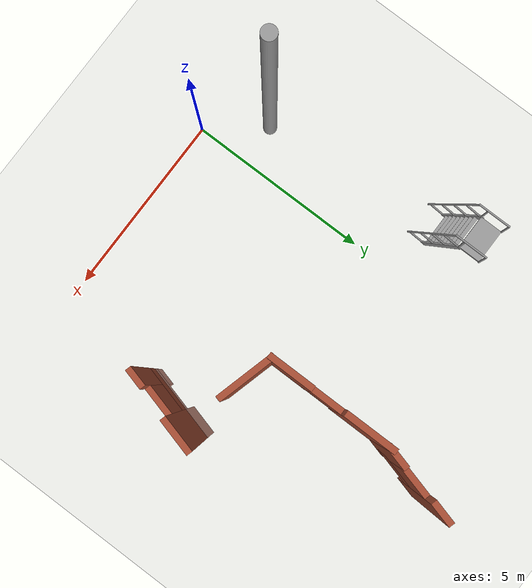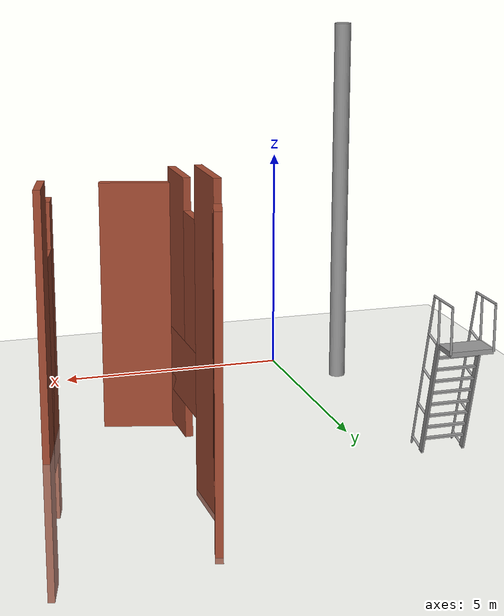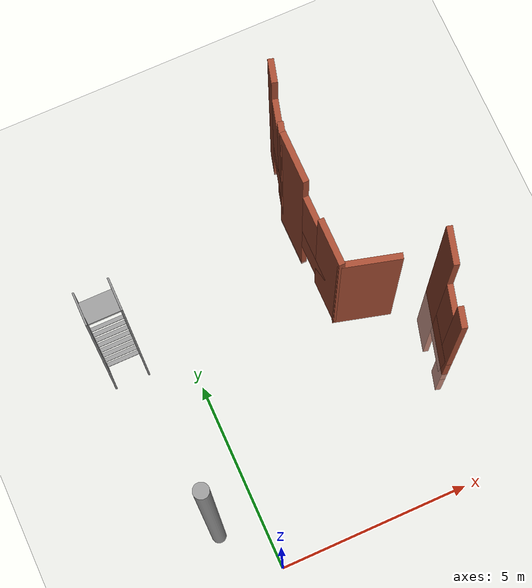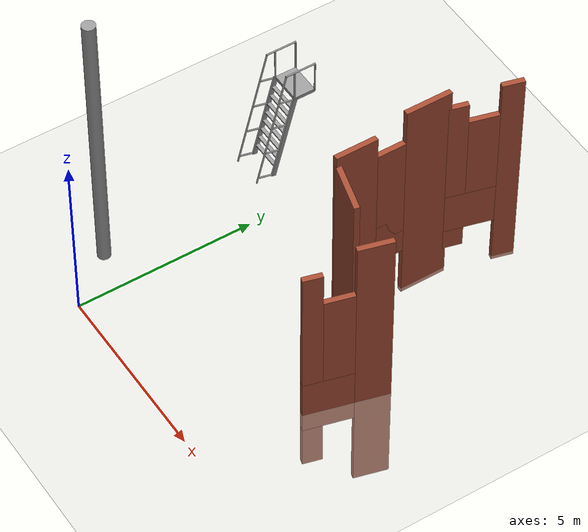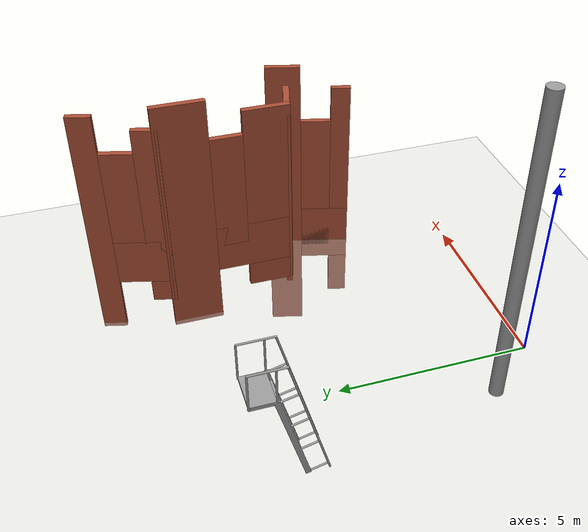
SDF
<sdf version="1.6">
 <world name="default">
  <model name="ground_plane">
   <static>1</static>
   <link name="link">
    <collision name="collision">
     <geometry><plane><normal>0 0 1</normal><size>100 100</size></plane></geometry>
     <surface><friction><ode><mu>100</mu><mu2>50</mu2></ode></friction></surface>
    </collision>
    <visual name="visual">
     <cast_shadows>0</cast_shadows>
     <geometry><plane><normal>0 0 1</normal><size>100 100</size></plane></geometry>
     <material>
      <script><uri>file://media/materials/scripts/gazebo.material</uri><name>Gazebo/Grey</name></script>
     </material>
    </visual>
   </link>
  </model>
  <model name="ladder_75deg_2rails">
   <static>1</static>
   <link name="step0">
    <pose>0 0.071453 0.266667 0 -0 0</pose>
    <inertial>
     <mass>9.75482</mass>
     <inertia>
      <ixx>0.00957124</ixx>
      <iyy>0.65963</iyy>
      <izz>0.666842</izz>
      <ixy>0</ixy>
      <ixz>0</ixz>
      <iyz>0</iyz>
     </inertia>
    </inertial>
    <collision name="collision"><geometry><box><size>0.9 0.1016 0.0381</size></box></geometry></collision>
    <visual name="visual">
     <geometry><box><size>0.9 0.1016 0.0381</size></box></geometry>
     <material>
      <script><uri>file://media/materials/scripts/gazebo.material</uri><name>Gazebo/Grey</name></script>
     </material>
    </visual>
   </link>
   <link name="step1">
    <pose>0 0.142906 0.533333 0 -0 0</pose>
    <inertial>
     <mass>9.75482</mass>
     <inertia>
      <ixx>0.00957124</ixx>
      <iyy>0.65963</iyy>
      <izz>0.666842</izz>
      <ixy>0</ixy>
      <ixz>0</ixz>
      <iyz>0</iyz>
     </inertia>
    </inertial>
    <collision name="collision"><geometry><box><size>0.9 0.1016 0.0381</size></box></geometry></collision>
    <visual name="visual">
     <geometry><box><size>0.9 0.1016 0.0381</size></box></geometry>
     <material>
      <script><uri>file://media/materials/scripts/gazebo.material</uri><name>Gazebo/Grey</name></script>
     </material>
    </visual>
   </link>
   <link name="step2">
    <pose>0 0.214359 0.8 0 -0 0</pose>
    <inertial>
     <mass>9.75482</mass>
     <inertia>
      <ixx>0.00957124</ixx>
      <iyy>0.65963</iyy>
      <izz>0.666842</izz>
      <ixy>0</ixy>
      <ixz>0</ixz>
      <iyz>0</iyz>
     </inertia>
    </inertial>
    <collision name="collision"><geometry><box><size>0.9 0.1016 0.0381</size></box></geometry></collision>
    <visual name="visual">
     <geometry><box><size>0.9 0.1016 0.0381</size></box></geometry>
     <material>
      <script><uri>file://media/materials/scripts/gazebo.material</uri><name>Gazebo/Grey</name></script>
     </material>
    </visual>
   </link>
   <link name="step3">
    <pose>0 0.285812 1.06667 0 -0 0</pose>
    <inertial>
     <mass>9.75482</mass>
     <inertia>
      <ixx>0.00957124</ixx>
      <iyy>0.65963</iyy>
      <izz>0.666842</izz>
      <ixy>0</ixy>
      <ixz>0</ixz>
      <iyz>0</iyz>
     </inertia>
    </inertial>
    <collision name="collision"><geometry><box><size>0.9 0.1016 0.0381</size></box></geometry></collision>
    <visual name="visual">
     <geometry><box><size>0.9 0.1016 0.0381</size></box></geometry>
     <material>
      <script><uri>file://media/materials/scripts/gazebo.material</uri><name>Gazebo/Grey</name></script>
     </material>
    </visual>
   </link>
   <link name="step4">
    <pose>0 0.357266 1.33333 0 -0 0</pose>
    <inertial>
     <mass>9.75482</mass>
     <inertia>
      <ixx>0.00957124</ixx>
      <iyy>0.65963</iyy>
      <izz>0.666842</izz>
      <ixy>0</ixy>
      <ixz>0</ixz>
      <iyz>0</iyz>
     </inertia>
    </inertial>
    <collision name="collision"><geometry><box><size>0.9 0.1016 0.0381</size></box></geometry></collision>
    <visual name="visual">
     <geometry><box><size>0.9 0.1016 0.0381</size></box></geometry>
     <material>
      <script><uri>file://media/materials/scripts/gazebo.material</uri><name>Gazebo/Grey</name></script>
     </material>
    </visual>
   </link>
   <link name="step5">
    <pose>0 0.428719 1.6 0 -0 0</pose>
    <inertial>
     <mass>9.75482</mass>
     <inertia>
      <ixx>0.00957124</ixx>
      <iyy>0.65963</iyy>
      <izz>0.666842</izz>
      <ixy>0</ixy>
      <ixz>0</ixz>
      <iyz>0</iyz>
     </inertia>
    </inertial>
    <collision name="collision"><geometry><box><size>0.9 0.1016 0.0381</size></box></geometry></collision>
    <visual name="visual">
     <geometry><box><size>0.9 0.1016 0.0381</size></box></geometry>
     <material>
      <script><uri>file://media/materials/scripts/gazebo.material</uri><name>Gazebo/Grey</name></script>
     </material>
    </visual>
   </link>
   <link name="step6">
    <pose>0 0.500172 1.86667 0 -0 0</pose>
    <inertial>
     <mass>9.75482</mass>
     <inertia>
      <ixx>0.00957124</ixx>
      <iyy>0.65963</iyy>
      <izz>0.666842</izz>
      <ixy>0</ixy>
      <ixz>0</ixz>
      <iyz>0</iyz>
     </inertia>
    </inertial>
    <collision name="collision"><geometry><box><size>0.9 0.1016 0.0381</size></box></geometry></collision>
    <visual name="visual">
     <geometry><box><size>0.9 0.1016 0.0381</size></box></geometry>
     <material>
      <script><uri>file://media/materials/scripts/gazebo.material</uri><name>Gazebo/Grey</name></script>
     </material>
    </visual>
   </link>
   <link name="step7">
    <pose>0 0.571625 2.13333 0 -0 0</pose>
    <inertial>
     <mass>9.75482</mass>
     <inertia>
      <ixx>0.00957124</ixx>
      <iyy>0.65963</iyy>
      <izz>0.666842</izz>
      <ixy>0</ixy>
      <ixz>0</ixz>
      <iyz>0</iyz>
     </inertia>
    </inertial>
    <collision name="collision"><geometry><box><size>0.9 0.1016 0.0381</size></box></geometry></collision>
    <visual name="visual">
     <geometry><box><size>0.9 0.1016 0.0381</size></box></geometry>
     <material>
      <script><uri>file://media/materials/scripts/gazebo.material</uri><name>Gazebo/Grey</name></script>
     </material>
    </visual>
   </link>
   <link name="landing">
    <pose>0 0.943078 2.4 0 -0 0</pose>
    <inertial>
     <mass>57.6072</mass>
     <inertia><ixx>1.73518</ixx><iyy>3.89545</iyy><izz>5.6167</izz><ixy>0</ixy><ixz>0</ixz><iyz>0</iyz></inertia>
    </inertial>
    <collision name="collision"><geometry><box><size>0.9 0.6 0.1016</size></box></geometry></collision>
    <visual name="visual">
     <geometry><box><size>0.9 0.6 0.1016</size></box></geometry>
     <material>
      <script><uri>file://media/materials/scripts/gazebo.material</uri><name>Gazebo/Grey</name></script>
     </material>
    </visual>
   </link>
   <link name="left_side_wall">
    <pose>-0.45 0.321539 1.2 1.309 -0 0</pose>
    <collision name="collision"><geometry><box><size>0.0508 2.56466 0.13</size></box></geometry></collision>
    <visual name="visual">
     <geometry><box><size>0.0508 2.56466 0.13</size></box></geometry>
     <material>
      <script><uri>file://media/materials/scripts/gazebo.material</uri><name>Gazebo/Grey</name></script>
     </material>
    </visual>
   </link>
   <link name="right_side_wall">
    <pose>0.45 0.321539 1.2 1.309 -0 0</pose>
    <collision name="collision"><geometry><box><size>0.0508 2.56466 0.13</size></box></geometry></collision>
    <visual name="visual">
     <geometry><box><size>0.0508 2.56466 0.13</size></box></geometry>
     <material>
      <script><uri>file://media/materials/scripts/gazebo.material</uri><name>Gazebo/Grey</name></script>
     </material>
    </visual>
   </link>
   <link name="left_railing_long">
    <pose>-0.45 -0.053461 1.66651 -0.261799 0 0</pose>
    <collision name="collision">
     <geometry><cylinder><radius>0.02413</radius><length>3.51529</length></cylinder></geometry>
    </collision>
    <visual name="visual">
     <geometry><cylinder><radius>0.02413</radius><length>3.51529</length></cylinder></geometry>
     <material>
      <script><uri>file://media/materials/scripts/gazebo.material</uri><name>Gazebo/Grey</name></script>
     </material>
    </visual>
   </link>
   <link name="left_railing_upright0">
    <pose>-0.45 -0.210089 0.056293 1.309 -0 0</pose>
    <collision name="collision">
     <geometry><cylinder><radius>0.02413</radius><length>0.482963</length></cylinder></geometry>
    </collision>
    <visual name="visual">
     <geometry><cylinder><radius>0.02413</radius><length>0.482963</length></cylinder></geometry>
     <material>
      <script><uri>file://media/materials/scripts/gazebo.material</uri><name>Gazebo/Grey</name></script>
     </material>
    </visual>
   </link>
   <link name="left_railing_upright1">
    <pose>-0.45 0.00427 0.856293 1.309 -0 0</pose>
    <collision name="collision">
     <geometry><cylinder><radius>0.02413</radius><length>0.482963</length></cylinder></geometry>
    </collision>
    <visual name="visual">
     <geometry><cylinder><radius>0.02413</radius><length>0.482963</length></cylinder></geometry>
     <material>
      <script><uri>file://media/materials/scripts/gazebo.material</uri><name>Gazebo/Grey</name></script>
     </material>
    </visual>
   </link>
   <link name="left_railing_upright2">
    <pose>-0.45 0.21863 1.65629 1.309 -0 0</pose>
    <collision name="collision">
     <geometry><cylinder><radius>0.02413</radius><length>0.482963</length></cylinder></geometry>
    </collision>
    <visual name="visual">
     <geometry><cylinder><radius>0.02413</radius><length>0.482963</length></cylinder></geometry>
     <material>
      <script><uri>file://media/materials/scripts/gazebo.material</uri><name>Gazebo/Grey</name></script>
     </material>
    </visual>
   </link>
   <link name="left_railing_upright3">
    <pose>-0.45 0.432989 2.45629 1.309 -0 0</pose>
    <collision name="collision">
     <geometry><cylinder><radius>0.02413</radius><length>0.482963</length></cylinder></geometry>
    </collision>
    <visual name="visual">
     <geometry><cylinder><radius>0.02413</radius><length>0.482963</length></cylinder></geometry>
     <material>
      <script><uri>file://media/materials/scripts/gazebo.material</uri><name>Gazebo/Grey</name></script>
     </material>
    </visual>
   </link>
   <link name="left_railing_landing_top">
    <pose>-0.45 0.818078 3.35714 1.5708 -0 0</pose>
    <collision name="collision">
     <geometry><cylinder><radius>0.02413</radius><length>0.87413</length></cylinder></geometry>
    </collision>
    <visual name="visual">
     <geometry><cylinder><radius>0.02413</radius><length>0.87413</length></cylinder></geometry>
     <material>
      <script><uri>file://media/materials/scripts/gazebo.material</uri><name>Gazebo/Grey</name></script>
     </material>
    </visual>
   </link>
   <link name="left_railing_landing_upright_0">
    <pose>-0.45 0.643078 2.86651 0 -0 0</pose>
    <collision name="collision">
     <geometry><cylinder><radius>0.02413</radius><length>0.933013</length></cylinder></geometry>
    </collision>
    <visual name="visual">
     <geometry><cylinder><radius>0.02413</radius><length>0.933013</length></cylinder></geometry>
     <material>
      <script><uri>file://media/materials/scripts/gazebo.material</uri><name>Gazebo/Grey</name></script>
     </material>
    </visual>
   </link>
   <link name="left_railing_landing_upright_1">
    <pose>-0.45 1.24308 2.86651 0 -0 0</pose>
    <collision name="collision">
     <geometry><cylinder><radius>0.02413</radius><length>0.933013</length></cylinder></geometry>
    </collision>
    <visual name="visual">
     <geometry><cylinder><radius>0.02413</radius><length>0.933013</length></cylinder></geometry>
     <material>
      <script><uri>file://media/materials/scripts/gazebo.material</uri><name>Gazebo/Grey</name></script>
     </material>
    </visual>
   </link>
   <link name="right_railing_long">
    <pose>0.45 -0.053461 1.66651 -0.261799 0 0</pose>
    <collision name="collision">
     <geometry><cylinder><radius>0.02413</radius><length>3.51529</length></cylinder></geometry>
    </collision>
    <visual name="visual">
     <geometry><cylinder><radius>0.02413</radius><length>3.51529</length></cylinder></geometry>
     <material>
      <script><uri>file://media/materials/scripts/gazebo.material</uri><name>Gazebo/Grey</name></script>
     </material>
    </visual>
   </link>
   <link name="right_railing_upright0">
    <pose>0.45 -0.210089 0.056293 1.309 -0 0</pose>
    <collision name="collision">
     <geometry><cylinder><radius>0.02413</radius><length>0.482963</length></cylinder></geometry>
    </collision>
    <visual name="visual">
     <geometry><cylinder><radius>0.02413</radius><length>0.482963</length></cylinder></geometry>
     <material>
      <script><uri>file://media/materials/scripts/gazebo.material</uri><name>Gazebo/Grey</name></script>
     </material>
    </visual>
   </link>
   <link name="right_railing_upright1">
    <pose>0.45 0.00427 0.856293 1.309 -0 0</pose>
    <collision name="collision">
     <geometry><cylinder><radius>0.02413</radius><length>0.482963</length></cylinder></geometry>
    </collision>
    <visual name="visual">
     <geometry><cylinder><radius>0.02413</radius><length>0.482963</length></cylinder></geometry>
     <material>
      <script><uri>file://media/materials/scripts/gazebo.material</uri><name>Gazebo/Grey</name></script>
     </material>
    </visual>
   </link>
   <link name="right_railing_upright2">
    <pose>0.45 0.21863 1.65629 1.309 -0 0</pose>
    <collision name="collision">
     <geometry><cylinder><radius>0.02413</radius><length>0.482963</length></cylinder></geometry>
    </collision>
    <visual name="visual">
     <geometry><cylinder><radius>0.02413</radius><length>0.482963</length></cylinder></geometry>
     <material>
      <script><uri>file://media/materials/scripts/gazebo.material</uri><name>Gazebo/Grey</name></script>
     </material>
    </visual>
   </link>
   <link name="right_railing_upright3">
    <pose>0.45 0.432989 2.45629 1.309 -0 0</pose>
    <collision name="collision">
     <geometry><cylinder><radius>0.02413</radius><length>0.482963</length></cylinder></geometry>
    </collision>
    <visual name="visual">
     <geometry><cylinder><radius>0.02413</radius><length>0.482963</length></cylinder></geometry>
     <material>
      <script><uri>file://media/materials/scripts/gazebo.material</uri><name>Gazebo/Grey</name></script>
     </material>
    </visual>
   </link>
   <link name="right_railing_landing_top">
    <pose>0.45 0.818078 3.35714 1.5708 -0 0</pose>
    <collision name="collision">
     <geometry><cylinder><radius>0.02413</radius><length>0.87413</length></cylinder></geometry>
    </collision>
    <visual name="visual">
     <geometry><cylinder><radius>0.02413</radius><length>0.87413</length></cylinder></geometry>
     <material>
      <script><uri>file://media/materials/scripts/gazebo.material</uri><name>Gazebo/Grey</name></script>
     </material>
    </visual>
   </link>
   <link name="right_railing_landing_upright_0">
    <pose>0.45 0.643078 2.86651 0 -0 0</pose>
    <collision name="collision">
     <geometry><cylinder><radius>0.02413</radius><length>0.933013</length></cylinder></geometry>
    </collision>
    <visual name="visual">
     <geometry><cylinder><radius>0.02413</radius><length>0.933013</length></cylinder></geometry>
     <material>
      <script><uri>file://media/materials/scripts/gazebo.material</uri><name>Gazebo/Grey</name></script>
     </material>
    </visual>
   </link>
   <link name="right_railing_landing_upright_1">
    <pose>0.45 1.24308 2.86651 0 -0 0</pose>
    <collision name="collision">
     <geometry><cylinder><radius>0.02413</radius><length>0.933013</length></cylinder></geometry>
    </collision>
    <visual name="visual">
     <geometry><cylinder><radius>0.02413</radius><length>0.933013</length></cylinder></geometry>
     <material>
      <script><uri>file://media/materials/scripts/gazebo.material</uri><name>Gazebo/Grey</name></script>
     </material>
    </visual>
   </link>
   <pose>-1.56017 6.39658 0 0 -0 0</pose>
  </model>
  <model name="static_cylinder_1">
   <link name="link">
    <inertial>
     <mass>1</mass>
     <inertia><ixx>0.145833</ixx><ixy>0</ixy><ixz>0</ixz><iyy>0.145833</iyy><iyz>0</iyz><izz>0.125</izz></inertia>
    </inertial>
    <visual name="visual">
     <geometry><cylinder><radius>0.179996</radius><length>8.1225</length></cylinder></geometry>
     <material>
      <script><name>Gazebo/Grey</name><uri>file://media/materials/scripts/gazebo.material</uri></script>
      <ambient>0.3 0.3 0.3 1</ambient>
      <diffuse>0.7 0.7 0.7 1</diffuse>
      <specular>0.01 0.01 0.01 1</specular>
      <emissive>0 0 0 1</emissive>
     </material>
    </visual>
    <collision name="collision">
     <geometry><cylinder><radius>0.179996</radius><length>8.1225</length></cylinder></geometry>
     <surface>
      <friction>
       <ode><mu>1</mu><mu2>1</mu2><fdir1>0 0 0</fdir1><slip1>0</slip1><slip2>0</slip2></ode>
       <torsional>
        <coefficient>1</coefficient>
        <patch_radius>0</patch_radius>
        <surface_radius>0</surface_radius>
        <use_patch_radius>1</use_patch_radius>
        <ode><slip>0</slip></ode>
       </torsional>
      </friction>
      <bounce><restitution_coefficient>0</restitution_coefficient><threshold>1e+06</threshold></bounce>
      <contact>
       <collide_without_contact>0</collide_without_contact>
       <collide_without_contact_bitmask>1</collide_without_contact_bitmask>
       <collide_bitmask>1</collide_bitmask>
       <ode>
        <soft_cfm>0</soft_cfm>
        <soft_erp>0.2</soft_erp>
        <kp>1e+13</kp>
        <kd>1</kd>
        <max_vel>0.01</max_vel>
        <min_depth>0</min_depth>
       </ode>
       <bullet>
        <split_impulse>1</split_impulse>
        <split_impulse_penetration_threshold>-0.01</split_impulse_penetration_threshold>
        <soft_cfm>0</soft_cfm>
        <soft_erp>0.2</soft_erp>
        <kp>1e+13</kp>
        <kd>1</kd>
       </bullet>
      </contact>
     </surface>
    </collision>
   </link>
   <static>1</static>
   <pose>-1.11515 1.37724 4.06125 -1.4e-05 -8e-06 -0.0024</pose>
  </model>
  <model name="slam_example_sustitutosaloon_0">
   <link name="Wall_12">
    <pose>-0.412592 2.73893 1.73566 0 0 -1.8326</pose>
    <inertial>
     <inertia><ixx>nan</ixx><ixy>0</ixy><ixz>0</ixz><iyy>nan</iyy><iyz>0</iyz><izz>nan</izz></inertia>
     <mass>0</mass>
    </inertial>
    <visual name="Wall_12_Visual_0">
     <pose>-0.704929 0 1.25 0 -0 0</pose>
     <geometry><box><size>0.590142 0.15 6.23287</size></box></geometry>
     <material>
      <script><uri>file://media/materials/scripts/gazebo.material</uri><name>Gazebo/Bricks</name></script>
      <ambient>1 1 1 1</ambient>
      <diffuse>1 1 1 1</diffuse>
      <specular>0.2 0.2 0.2 1</specular>
      <emissive>0 0 0 1</emissive>
     </material>
    </visual>
    <visual name="Wall_12_Visual_1">
     <pose>0.295071 0 0.25 0 -0 0</pose>
     <geometry><box><size>1.40986 0.15 1.24657</size></box></geometry>
     <material>
      <script><uri>file://media/materials/scripts/gazebo.material</uri><name>Gazebo/Bricks</name></script>
      <ambient>1 1 1 1</ambient>
      <diffuse>1 1 1 1</diffuse>
      <specular>0.2 0.2 0.2 1</specular>
      <emissive>0 0 0 1</emissive>
     </material>
    </visual>
    <visual name="Wall_12_Visual_2">
     <pose>0.695071 0 1.5 0 -0 0</pose>
     <geometry><box><size>0.609858 0.15 4.9863</size></box></geometry>
     <material>
      <script><uri>file://media/materials/scripts/gazebo.material</uri><name>Gazebo/Bricks</name></script>
      <ambient>1 1 1 1</ambient>
      <diffuse>1 1 1 1</diffuse>
      <specular>0.2 0.2 0.2 1</specular>
      <emissive>0 0 0 1</emissive>
     </material>
    </visual>
    <visual name="Wall_12_Visual_3">
     <pose>-0.009858 0 1.9 0 -0 0</pose>
     <geometry><box><size>0.8 0.15 2.99177</size></box></geometry>
     <material>
      <script><uri>file://media/materials/scripts/gazebo.material</uri><name>Gazebo/Bricks</name></script>
      <ambient>1 1 1 1</ambient>
      <diffuse>1 1 1 1</diffuse>
      <specular>0.2 0.2 0.2 1</specular>
      <emissive>0 0 0 1</emissive>
     </material>
    </visual>
    <collision name="Wall_12_Collision_0">
     <pose>-0.704929 0 1.25 0 -0 0</pose>
     <geometry><box><size>0.590142 0.15 6.23287</size></box></geometry>
     <surface>
      <friction>
       <ode><mu>1</mu><mu2>1</mu2><fdir1>0 0 0</fdir1><slip1>0</slip1><slip2>0</slip2></ode>
       <torsional>
        <coefficient>1</coefficient>
        <patch_radius>0</patch_radius>
        <surface_radius>0</surface_radius>
        <use_patch_radius>1</use_patch_radius>
        <ode><slip>0</slip></ode>
       </torsional>
      </friction>
      <bounce><restitution_coefficient>0</restitution_coefficient><threshold>1e+06</threshold></bounce>
      <contact>
       <collide_without_contact>0</collide_without_contact>
       <collide_without_contact_bitmask>1</collide_without_contact_bitmask>
       <collide_bitmask>1</collide_bitmask>
       <ode>
        <soft_cfm>0</soft_cfm>
        <soft_erp>0.2</soft_erp>
        <kp>1e+13</kp>
        <kd>1</kd>
        <max_vel>0.01</max_vel>
        <min_depth>0</min_depth>
       </ode>
       <bullet>
        <split_impulse>1</split_impulse>
        <split_impulse_penetration_threshold>-0.01</split_impulse_penetration_threshold>
        <soft_cfm>0</soft_cfm>
        <soft_erp>0.2</soft_erp>
        <kp>1e+13</kp>
        <kd>1</kd>
       </bullet>
      </contact>
     </surface>
    </collision>
    <collision name="Wall_12_Collision_1">
     <pose>0.295071 0 0.25 0 -0 0</pose>
     <geometry><box><size>1.40986 0.15 1.24657</size></box></geometry>
     <surface>
      <friction>
       <ode><mu>1</mu><mu2>1</mu2><fdir1>0 0 0</fdir1><slip1>0</slip1><slip2>0</slip2></ode>
       <torsional>
        <coefficient>1</coefficient>
        <patch_radius>0</patch_radius>
        <surface_radius>0</surface_radius>
        <use_patch_radius>1</use_patch_radius>
        <ode><slip>0</slip></ode>
       </torsional>
      </friction>
      <bounce><restitution_coefficient>0</restitution_coefficient><threshold>1e+06</threshold></bounce>
      <contact>
       <collide_without_contact>0</collide_without_contact>
       <collide_without_contact_bitmask>1</collide_without_contact_bitmask>
       <collide_bitmask>1</collide_bitmask>
       <ode>
        <soft_cfm>0</soft_cfm>
        <soft_erp>0.2</soft_erp>
        <kp>1e+13</kp>
        <kd>1</kd>
        <max_vel>0.01</max_vel>
        <min_depth>0</min_depth>
       </ode>
       <bullet>
        <split_impulse>1</split_impulse>
        <split_impulse_penetration_threshold>-0.01</split_impulse_penetration_threshold>
        <soft_cfm>0</soft_cfm>
        <soft_erp>0.2</soft_erp>
        <kp>1e+13</kp>
        <kd>1</kd>
       </bullet>
      </contact>
     </surface>
    </collision>
    <collision name="Wall_12_Collision_2">
     <pose>0.695071 0 1.5 0 -0 0</pose>
     <geometry><box><size>0.609858 0.15 4.9863</size></box></geometry>
     <surface>
      <friction>
       <ode><mu>1</mu><mu2>1</mu2><fdir1>0 0 0</fdir1><slip1>0</slip1><slip2>0</slip2></ode>
       <torsional>
        <coefficient>1</coefficient>
        <patch_radius>0</patch_radius>
        <surface_radius>0</surface_radius>
        <use_patch_radius>1</use_patch_radius>
        <ode><slip>0</slip></ode>
       </torsional>
      </friction>
      <bounce><restitution_coefficient>0</restitution_coefficient><threshold>1e+06</threshold></bounce>
      <contact>
       <collide_without_contact>0</collide_without_contact>
       <collide_without_contact_bitmask>1</collide_without_contact_bitmask>
       <collide_bitmask>1</collide_bitmask>
       <ode>
        <soft_cfm>0</soft_cfm>
        <soft_erp>0.2</soft_erp>
        <kp>1e+13</kp>
        <kd>1</kd>
        <max_vel>0.01</max_vel>
        <min_depth>0</min_depth>
       </ode>
       <bullet>
        <split_impulse>1</split_impulse>
        <split_impulse_penetration_threshold>-0.01</split_impulse_penetration_threshold>
        <soft_cfm>0</soft_cfm>
        <soft_erp>0.2</soft_erp>
        <kp>1e+13</kp>
        <kd>1</kd>
       </bullet>
      </contact>
     </surface>
    </collision>
    <collision name="Wall_12_Collision_3">
     <pose>-0.009858 0 1.9 0 -0 0</pose>
     <geometry><box><size>0.8 0.15 2.99177</size></box></geometry>
     <surface>
      <friction>
       <ode><mu>1</mu><mu2>1</mu2><fdir1>0 0 0</fdir1><slip1>0</slip1><slip2>0</slip2></ode>
       <torsional>
        <coefficient>1</coefficient>
        <patch_radius>0</patch_radius>
        <surface_radius>0</surface_radius>
        <use_patch_radius>1</use_patch_radius>
        <ode><slip>0</slip></ode>
       </torsional>
      </friction>
      <bounce><restitution_coefficient>0</restitution_coefficient><threshold>1e+06</threshold></bounce>
      <contact>
       <collide_without_contact>0</collide_without_contact>
       <collide_without_contact_bitmask>1</collide_without_contact_bitmask>
       <collide_bitmask>1</collide_bitmask>
       <ode>
        <soft_cfm>0</soft_cfm>
        <soft_erp>0.2</soft_erp>
        <kp>1e+13</kp>
        <kd>1</kd>
        <max_vel>0.01</max_vel>
        <min_depth>0</min_depth>
       </ode>
       <bullet>
        <split_impulse>1</split_impulse>
        <split_impulse_penetration_threshold>-0.01</split_impulse_penetration_threshold>
        <soft_cfm>0</soft_cfm>
        <soft_erp>0.2</soft_erp>
        <kp>1e+13</kp>
        <kd>1</kd>
       </bullet>
      </contact>
     </surface>
    </collision>
   </link>
   <link name="Wall_13">
    <pose>-0.652 0.295444 1.81567 0 0 -1.5708</pose>
    <inertial>
     <inertia><ixx>nan</ixx><ixy>0</ixy><ixz>0</ixz><iyy>nan</iyy><iyz>0</iyz><izz>nan</izz></inertia>
     <mass>0</mass>
    </inertial>
    <visual name="Wall_13_Visual_3">
     <pose>0.063175 0 1.9 0 -0 0</pose>
     <geometry><box><size>0.8 0.15 3.08384</size></box></geometry>
     <material>
      <script><uri>file://media/materials/scripts/gazebo.material</uri><name>Gazebo/Bricks</name></script>
      <ambient>1 1 1 1</ambient>
      <diffuse>1 1 1 1</diffuse>
      <specular>0.2 0.2 0.2 1</specular>
      <emissive>0 0 0 1</emissive>
     </material>
    </visual>
    <visual name="Wall_13_Visual_0">
     <pose>-0.980913 0 1.25 0 -0 0</pose>
     <geometry><box><size>1.28818 0.15 6.42467</size></box></geometry>
     <material>
      <script><uri>file://media/materials/scripts/gazebo.material</uri><name>Gazebo/Bricks</name></script>
      <ambient>1 1 1 1</ambient>
      <diffuse>1 1 1 1</diffuse>
      <specular>0.2 0.2 0.2 1</specular>
      <emissive>0 0 0 1</emissive>
     </material>
    </visual>
    <visual name="Wall_13_Visual_1">
     <pose>0.644087 0 0.25 0 -0 0</pose>
     <geometry><box><size>1.96182 0.15 1.28591</size></box></geometry>
     <material>
      <script><uri>file://media/materials/scripts/gazebo.material</uri><name>Gazebo/Bricks</name></script>
      <ambient>1 1 1 1</ambient>
      <diffuse>1 1 1 1</diffuse>
      <specular>0.2 0.2 0.2 1</specular>
      <emissive>0 0 0 1</emissive>
     </material>
    </visual>
    <visual name="Wall_13_Visual_2">
     <pose>1.04409 0 1.5 0 -0 0</pose>
     <geometry><box><size>1.16183 0.15 5.13973</size></box></geometry>
     <material>
      <script><uri>file://media/materials/scripts/gazebo.material</uri><name>Gazebo/Bricks</name></script>
      <ambient>1 1 1 1</ambient>
      <diffuse>1 1 1 1</diffuse>
      <specular>0.2 0.2 0.2 1</specular>
      <emissive>0 0 0 1</emissive>
     </material>
    </visual>
    <collision name="Wall_13_Collision_0">
     <pose>-0.980913 0 1.25 0 -0 0</pose>
     <geometry><box><size>1.28818 0.15 6.42467</size></box></geometry>
     <surface>
      <friction>
       <ode><mu>1</mu><mu2>1</mu2><fdir1>0 0 0</fdir1><slip1>0</slip1><slip2>0</slip2></ode>
       <torsional>
        <coefficient>1</coefficient>
        <patch_radius>0</patch_radius>
        <surface_radius>0</surface_radius>
        <use_patch_radius>1</use_patch_radius>
        <ode><slip>0</slip></ode>
       </torsional>
      </friction>
      <bounce><restitution_coefficient>0</restitution_coefficient><threshold>1e+06</threshold></bounce>
      <contact>
       <collide_without_contact>0</collide_without_contact>
       <collide_without_contact_bitmask>1</collide_without_contact_bitmask>
       <collide_bitmask>1</collide_bitmask>
       <ode>
        <soft_cfm>0</soft_cfm>
        <soft_erp>0.2</soft_erp>
        <kp>1e+13</kp>
        <kd>1</kd>
        <max_vel>0.01</max_vel>
        <min_depth>0</min_depth>
       </ode>
       <bullet>
        <split_impulse>1</split_impulse>
        <split_impulse_penetration_threshold>-0.01</split_impulse_penetration_threshold>
        <soft_cfm>0</soft_cfm>
        <soft_erp>0.2</soft_erp>
        <kp>1e+13</kp>
        <kd>1</kd>
       </bullet>
      </contact>
     </surface>
    </collision>
    <collision name="Wall_13_Collision_1">
     <pose>0.644087 0 0.25 0 -0 0</pose>
     <geometry><box><size>1.96182 0.15 1.28591</size></box></geometry>
     <surface>
      <friction>
       <ode><mu>1</mu><mu2>1</mu2><fdir1>0 0 0</fdir1><slip1>0</slip1><slip2>0</slip2></ode>
       <torsional>
        <coefficient>1</coefficient>
        <patch_radius>0</patch_radius>
        <surface_radius>0</surface_radius>
        <use_patch_radius>1</use_patch_radius>
        <ode><slip>0</slip></ode>
       </torsional>
      </friction>
      <bounce><restitution_coefficient>0</restitution_coefficient><threshold>1e+06</threshold></bounce>
      <contact>
       <collide_without_contact>0</collide_without_contact>
       <collide_without_contact_bitmask>1</collide_without_contact_bitmask>
       <collide_bitmask>1</collide_bitmask>
       <ode>
        <soft_cfm>0</soft_cfm>
        <soft_erp>0.2</soft_erp>
        <kp>1e+13</kp>
        <kd>1</kd>
        <max_vel>0.01</max_vel>
        <min_depth>0</min_depth>
       </ode>
       <bullet>
        <split_impulse>1</split_impulse>
        <split_impulse_penetration_threshold>-0.01</split_impulse_penetration_threshold>
        <soft_cfm>0</soft_cfm>
        <soft_erp>0.2</soft_erp>
        <kp>1e+13</kp>
        <kd>1</kd>
       </bullet>
      </contact>
     </surface>
    </collision>
    <collision name="Wall_13_Collision_2">
     <pose>1.04409 0 1.5 0 -0 0</pose>
     <geometry><box><size>1.16183 0.15 5.13973</size></box></geometry>
     <surface>
      <friction>
       <ode><mu>1</mu><mu2>1</mu2><fdir1>0 0 0</fdir1><slip1>0</slip1><slip2>0</slip2></ode>
       <torsional>
        <coefficient>1</coefficient>
        <patch_radius>0</patch_radius>
        <surface_radius>0</surface_radius>
        <use_patch_radius>1</use_patch_radius>
        <ode><slip>0</slip></ode>
       </torsional>
      </friction>
      <bounce><restitution_coefficient>0</restitution_coefficient><threshold>1e+06</threshold></bounce>
      <contact>
       <collide_without_contact>0</collide_without_contact>
       <collide_without_contact_bitmask>1</collide_without_contact_bitmask>
       <collide_bitmask>1</collide_bitmask>
       <ode>
        <soft_cfm>0</soft_cfm>
        <soft_erp>0.2</soft_erp>
        <kp>1e+13</kp>
        <kd>1</kd>
        <max_vel>0.01</max_vel>
        <min_depth>0</min_depth>
       </ode>
       <bullet>
        <split_impulse>1</split_impulse>
        <split_impulse_penetration_threshold>-0.01</split_impulse_penetration_threshold>
        <soft_cfm>0</soft_cfm>
        <soft_erp>0.2</soft_erp>
        <kp>1e+13</kp>
        <kd>1</kd>
       </bullet>
      </contact>
     </surface>
    </collision>
    <collision name="Wall_13_Collision_3">
     <pose>0.063175 0 1.9 0 -0 0</pose>
     <geometry><box><size>0.8 0.15 3.08384</size></box></geometry>
     <surface>
      <friction>
       <ode><mu>1</mu><mu2>1</mu2><fdir1>0 0 0</fdir1><slip1>0</slip1><slip2>0</slip2></ode>
       <torsional>
        <coefficient>1</coefficient>
        <patch_radius>0</patch_radius>
        <surface_radius>0</surface_radius>
        <use_patch_radius>1</use_patch_radius>
        <ode><slip>0</slip></ode>
       </torsional>
      </friction>
      <bounce><restitution_coefficient>0</restitution_coefficient><threshold>1e+06</threshold></bounce>
      <contact>
       <collide_without_contact>0</collide_without_contact>
       <collide_without_contact_bitmask>1</collide_without_contact_bitmask>
       <collide_bitmask>1</collide_bitmask>
       <ode>
        <soft_cfm>0</soft_cfm>
        <soft_erp>0.2</soft_erp>
        <kp>1e+13</kp>
        <kd>1</kd>
        <max_vel>0.01</max_vel>
        <min_depth>0</min_depth>
       </ode>
       <bullet>
        <split_impulse>1</split_impulse>
        <split_impulse_penetration_threshold>-0.01</split_impulse_penetration_threshold>
        <soft_cfm>0</soft_cfm>
        <soft_erp>0.2</soft_erp>
        <kp>1e+13</kp>
        <kd>1</kd>
       </bullet>
      </contact>
     </surface>
    </collision>
   </link>
   <link name="Wall_14">
    <pose>0 -1.42926 1.84962 0 0 -0.261799</pose>
    <inertial>
     <inertia><ixx>nan</ixx><ixy>0</ixy><ixz>0</ixz><iyy>nan</iyy><iyz>0</iyz><izz>nan</izz></inertia>
     <mass>0</mass>
    </inertial>
    <visual name="Wall_14_Visual">
     <pose>0 0 1.25 0 -0 0</pose>
     <geometry><box><size>1.5 0.15 4.98904</size></box></geometry>
     <material>
      <script><uri>file://media/materials/scripts/gazebo.material</uri><name>Gazebo/Bricks</name></script>
      <ambient>1 1 1 1</ambient>
      <diffuse>1 1 1 1</diffuse>
      <specular>0.2 0.2 0.2 1</specular>
      <emissive>0 0 0 1</emissive>
     </material>
    </visual>
    <collision name="Wall_14_Collision">
     <pose>0 0 1.25 0 -0 0</pose>
     <geometry><box><size>1.5 0.15 4.98904</size></box></geometry>
     <surface>
      <friction>
       <ode><mu>1</mu><mu2>1</mu2><fdir1>0 0 0</fdir1><slip1>0</slip1><slip2>0</slip2></ode>
       <torsional>
        <coefficient>1</coefficient>
        <patch_radius>0</patch_radius>
        <surface_radius>0</surface_radius>
        <use_patch_radius>1</use_patch_radius>
        <ode><slip>0</slip></ode>
       </torsional>
      </friction>
      <bounce><restitution_coefficient>0</restitution_coefficient><threshold>1e+06</threshold></bounce>
      <contact>
       <collide_without_contact>0</collide_without_contact>
       <collide_without_contact_bitmask>1</collide_without_contact_bitmask>
       <collide_bitmask>1</collide_bitmask>
       <ode>
        <soft_cfm>0</soft_cfm>
        <soft_erp>0.2</soft_erp>
        <kp>1e+13</kp>
        <kd>1</kd>
        <max_vel>0.01</max_vel>
        <min_depth>0</min_depth>
       </ode>
       <bullet>
        <split_impulse>1</split_impulse>
        <split_impulse_penetration_threshold>-0.01</split_impulse_penetration_threshold>
        <soft_cfm>0</soft_cfm>
        <soft_erp>0.2</soft_erp>
        <kp>1e+13</kp>
        <kd>1</kd>
       </bullet>
      </contact>
     </surface>
    </collision>
   </link>
   <link name="Wall_17">
    <pose>1.67905 -2.48786 0 0 0 -1.8326</pose>
    <inertial>
     <inertia><ixx>nan</ixx><ixy>0</ixy><ixz>0</ixz><iyy>nan</iyy><iyz>0</iyz><izz>nan</izz></inertia>
     <mass>0</mass>
    </inertial>
    <visual name="Wall_17_Visual_0">
     <pose>-0.659985 0 1.25 0 -0 0</pose>
     <geometry><box><size>0.93003 0.15 8.61136</size></box></geometry>
     <material>
      <script><uri>file://media/materials/scripts/gazebo.material</uri><name>Gazebo/Bricks</name></script>
      <ambient>1 1 1 1</ambient>
      <diffuse>1 1 1 1</diffuse>
      <specular>0.2 0.2 0.2 1</specular>
      <emissive>0 0 0 1</emissive>
     </material>
    </visual>
    <visual name="Wall_17_Visual_1">
     <pose>0.465015 0 0.25 0 -0 0</pose>
     <geometry><box><size>1.31997 0.15 1.72228</size></box></geometry>
     <material>
      <script><uri>file://media/materials/scripts/gazebo.material</uri><name>Gazebo/Bricks</name></script>
      <ambient>1 1 1 1</ambient>
      <diffuse>1 1 1 1</diffuse>
      <specular>0.2 0.2 0.2 1</specular>
      <emissive>0 0 0 1</emissive>
     </material>
    </visual>
    <visual name="Wall_17_Visual_2">
     <pose>0.865015 0 1.5 0 -0 0</pose>
     <geometry><box><size>0.51997 0.15 6.88909</size></box></geometry>
     <material>
      <script><uri>file://media/materials/scripts/gazebo.material</uri><name>Gazebo/Bricks</name></script>
      <ambient>1 1 1 1</ambient>
      <diffuse>1 1 1 1</diffuse>
      <specular>0.2 0.2 0.2 1</specular>
      <emissive>0 0 0 1</emissive>
     </material>
    </visual>
    <visual name="Wall_17_Visual_3">
     <pose>0.20503 0 1.9 0 -0 0</pose>
     <geometry><box><size>0.8 0.15 4.13346</size></box></geometry>
     <material>
      <script><uri>file://media/materials/scripts/gazebo.material</uri><name>Gazebo/Bricks</name></script>
      <ambient>1 1 1 1</ambient>
      <diffuse>1 1 1 1</diffuse>
      <specular>0.2 0.2 0.2 1</specular>
      <emissive>0 0 0 1</emissive>
     </material>
    </visual>
    <collision name="Wall_17_Collision_0">
     <pose>-0.659985 0 1.25 0 -0 0</pose>
     <geometry><box><size>0.93003 0.15 8.61136</size></box></geometry>
     <surface>
      <friction>
       <ode><mu>1</mu><mu2>1</mu2><fdir1>0 0 0</fdir1><slip1>0</slip1><slip2>0</slip2></ode>
       <torsional>
        <coefficient>1</coefficient>
        <patch_radius>0</patch_radius>
        <surface_radius>0</surface_radius>
        <use_patch_radius>1</use_patch_radius>
        <ode><slip>0</slip></ode>
       </torsional>
      </friction>
      <bounce><restitution_coefficient>0</restitution_coefficient><threshold>1e+06</threshold></bounce>
      <contact>
       <collide_without_contact>0</collide_without_contact>
       <collide_without_contact_bitmask>1</collide_without_contact_bitmask>
       <collide_bitmask>1</collide_bitmask>
       <ode>
        <soft_cfm>0</soft_cfm>
        <soft_erp>0.2</soft_erp>
        <kp>1e+13</kp>
        <kd>1</kd>
        <max_vel>0.01</max_vel>
        <min_depth>0</min_depth>
       </ode>
       <bullet>
        <split_impulse>1</split_impulse>
        <split_impulse_penetration_threshold>-0.01</split_impulse_penetration_threshold>
        <soft_cfm>0</soft_cfm>
        <soft_erp>0.2</soft_erp>
        <kp>1e+13</kp>
        <kd>1</kd>
       </bullet>
      </contact>
     </surface>
    </collision>
    <collision name="Wall_17_Collision_2">
     <pose>0.865015 0 1.5 0 -0 0</pose>
     <geometry><box><size>0.51997 0.15 6.88909</size></box></geometry>
     <surface>
      <friction>
       <ode><mu>1</mu><mu2>1</mu2><fdir1>0 0 0</fdir1><slip1>0</slip1><slip2>0</slip2></ode>
       <torsional>
        <coefficient>1</coefficient>
        <patch_radius>0</patch_radius>
        <surface_radius>0</surface_radius>
        <use_patch_radius>1</use_patch_radius>
        <ode><slip>0</slip></ode>
       </torsional>
      </friction>
      <bounce><restitution_coefficient>0</restitution_coefficient><threshold>1e+06</threshold></bounce>
      <contact>
       <collide_without_contact>0</collide_without_contact>
       <collide_without_contact_bitmask>1</collide_without_contact_bitmask>
       <collide_bitmask>1</collide_bitmask>
       <ode>
        <soft_cfm>0</soft_cfm>
        <soft_erp>0.2</soft_erp>
        <kp>1e+13</kp>
        <kd>1</kd>
        <max_vel>0.01</max_vel>
        <min_depth>0</min_depth>
       </ode>
       <bullet>
        <split_impulse>1</split_impulse>
        <split_impulse_penetration_threshold>-0.01</split_impulse_penetration_threshold>
        <soft_cfm>0</soft_cfm>
        <soft_erp>0.2</soft_erp>
        <kp>1e+13</kp>
        <kd>1</kd>
       </bullet>
      </contact>
     </surface>
    </collision>
    <collision name="Wall_17_Collision_1">
     <pose>0.465015 0 0.25 0 -0 0</pose>
     <geometry><box><size>1.31997 0.15 1.72228</size></box></geometry>
     <surface>
      <friction>
       <ode><mu>1</mu><mu2>1</mu2><fdir1>0 0 0</fdir1><slip1>0</slip1><slip2>0</slip2></ode>
       <torsional>
        <coefficient>1</coefficient>
        <patch_radius>0</patch_radius>
        <surface_radius>0</surface_radius>
        <use_patch_radius>1</use_patch_radius>
        <ode><slip>0</slip></ode>
       </torsional>
      </friction>
      <bounce><restitution_coefficient>0</restitution_coefficient><threshold>1e+06</threshold></bounce>
      <contact>
       <collide_without_contact>0</collide_without_contact>
       <collide_without_contact_bitmask>1</collide_without_contact_bitmask>
       <collide_bitmask>1</collide_bitmask>
       <ode>
        <soft_cfm>0</soft_cfm>
        <soft_erp>0.2</soft_erp>
        <kp>1e+13</kp>
        <kd>1</kd>
        <max_vel>0.01</max_vel>
        <min_depth>0</min_depth>
       </ode>
       <bullet>
        <split_impulse>1</split_impulse>
        <split_impulse_penetration_threshold>-0.01</split_impulse_penetration_threshold>
        <soft_cfm>0</soft_cfm>
        <soft_erp>0.2</soft_erp>
        <kp>1e+13</kp>
        <kd>1</kd>
       </bullet>
      </contact>
     </surface>
    </collision>
    <collision name="Wall_17_Collision_3">
     <pose>0.20503 0 1.9 0 -0 0</pose>
     <geometry><box><size>0.8 0.15 4.13346</size></box></geometry>
     <surface>
      <friction>
       <ode><mu>1</mu><mu2>1</mu2><fdir1>0 0 0</fdir1><slip1>0</slip1><slip2>0</slip2></ode>
       <torsional>
        <coefficient>1</coefficient>
        <patch_radius>0</patch_radius>
        <surface_radius>0</surface_radius>
        <use_patch_radius>1</use_patch_radius>
        <ode><slip>0</slip></ode>
       </torsional>
      </friction>
      <bounce><restitution_coefficient>0</restitution_coefficient><threshold>1e+06</threshold></bounce>
      <contact>
       <collide_without_contact>0</collide_without_contact>
       <collide_without_contact_bitmask>1</collide_without_contact_bitmask>
       <collide_bitmask>1</collide_bitmask>
       <ode>
        <soft_cfm>0</soft_cfm>
        <soft_erp>0.2</soft_erp>
        <kp>1e+13</kp>
        <kd>1</kd>
        <max_vel>0.01</max_vel>
        <min_depth>0</min_depth>
       </ode>
       <bullet>
        <split_impulse>1</split_impulse>
        <split_impulse_penetration_threshold>-0.01</split_impulse_penetration_threshold>
        <soft_cfm>0</soft_cfm>
        <soft_erp>0.2</soft_erp>
        <kp>1e+13</kp>
        <kd>1</kd>
       </bullet>
      </contact>
     </surface>
    </collision>
   </link>
   <static>1</static>
   <pose>4.38392 6.37946 0 0 -0 0</pose>
  </model>
 </world>
</sdf>
